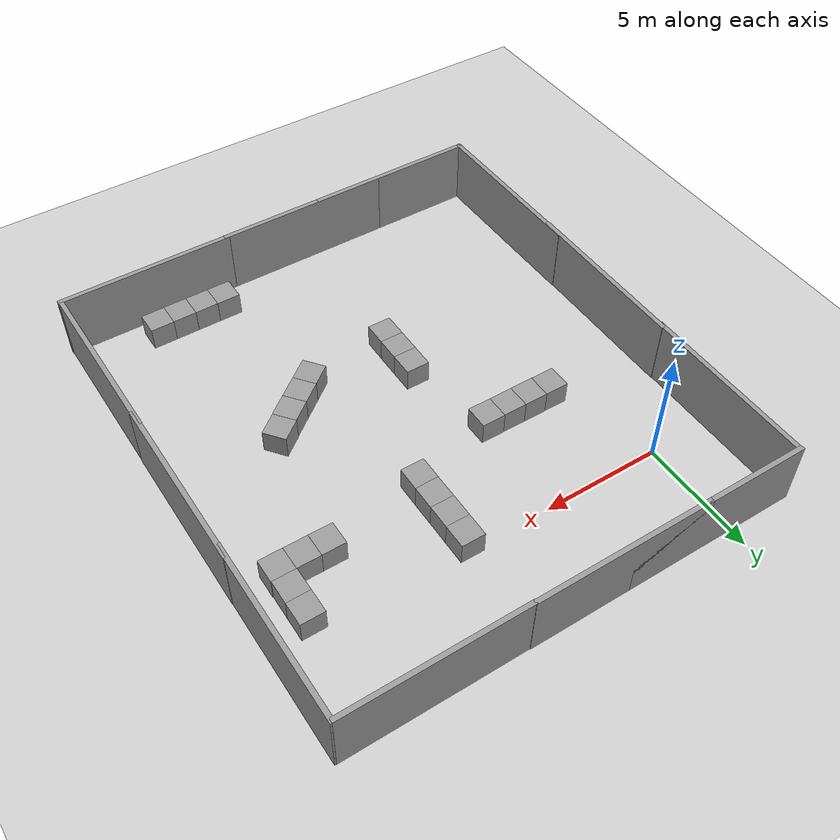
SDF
<sdf version="1.6">
 <world name="default">
  <light name="sun" type="directional">
   <pose>0 0 10 0 -0 0</pose>
   <diffuse>0.8 0.8 0.8 1</diffuse>
   <specular>0.2 0.2 0.2 1</specular>
   <attenuation>
    <range>1000</range>
    <constant>0.9</constant>
    <linear>0.01</linear>
    <quadratic>0.001</quadratic>
   </attenuation>
   <direction>-0.5 0.1 -0.9</direction>
  </light>
  <model name="ground_plane">
   <static>1</static>
   <link name="link">
    <collision name="collision">
     <geometry><plane><normal>0 0 1</normal><size>100 100</size></plane></geometry>
     <surface><friction><ode><mu>100</mu><mu2>50</mu2></ode></friction></surface>
    </collision>
    <visual name="visual">
     <cast_shadows>0</cast_shadows>
     <geometry><plane><normal>0 0 1</normal><size>100 100</size></plane></geometry>
     <material>
      <script><uri>file://media/materials/scripts/gazebo.material</uri><name>Gazebo/Grey</name></script>
     </material>
    </visual>
   </link>
  </model>
  <gravity>0 0 -9.8</gravity>
  <magnetic_field>6e-06 2.3e-05 -4.2e-05</magnetic_field>
  <atmosphere type="adiabatic"/>
  <physics name="default_physics" default="0" type="ode">
   <max_step_size>0.001</max_step_size>
   <real_time_factor>1</real_time_factor>
   <real_time_update_rate>1000</real_time_update_rate>
  </physics>
  <scene><ambient>0.4 0.4 0.4 1</ambient><background>0.7 0.7 0.7 1</background><shadows>1</shadows></scene>
  <audio><device>default</device></audio>
  <spherical_coordinates>
   <surface_model>EARTH_WGS84</surface_model>
   <latitude_deg>0</latitude_deg>
   <longitude_deg>0</longitude_deg>
   <elevation>0</elevation>
   <heading_deg>0</heading_deg>
  </spherical_coordinates>
  <model name="unit_box">
   <pose>4.67652 -4.41158 0.499995 1e-05 -0 -1.9e-05</pose>
   <link name="link">
    <inertial>
     <mass>1</mass>
     <inertia>
      <ixx>0.166667</ixx>
      <ixy>0</ixy>
      <ixz>0</ixz>
      <iyy>0.166667</iyy>
      <iyz>0</iyz>
      <izz>0.166667</izz>
     </inertia>
    </inertial>
    <collision name="collision"><geometry><box><size>1 1 1</size></box></geometry></collision>
    <visual name="visual">
     <geometry><box><size>1 1 1</size></box></geometry>
     <material>
      <script><name>Gazebo/Grey</name><uri>file://media/materials/scripts/gazebo.material</uri></script>
     </material>
    </visual>
   </link>
  </model>
  <model name="unit_box_clone">
   <pose>3.67652 -4.41308 0.499995 -1e-05 -0 -2.6e-05</pose>
   <link name="link">
    <inertial>
     <mass>1</mass>
     <inertia>
      <ixx>0.166667</ixx>
      <ixy>0</ixy>
      <ixz>0</ixz>
      <iyy>0.166667</iyy>
      <iyz>0</iyz>
      <izz>0.166667</izz>
     </inertia>
    </inertial>
    <collision name="collision"><geometry><box><size>1 1 1</size></box></geometry></collision>
    <visual name="visual">
     <geometry><box><size>1 1 1</size></box></geometry>
     <material>
      <script><name>Gazebo/Grey</name><uri>file://media/materials/scripts/gazebo.material</uri></script>
     </material>
    </visual>
   </link>
  </model>
  <model name="unit_box_clone_0">
   <pose>2.67642 -4.41272 0.499995 0 -1e-05 -4.2e-05</pose>
   <link name="link">
    <inertial>
     <mass>1</mass>
     <inertia>
      <ixx>0.166667</ixx>
      <ixy>0</ixy>
      <ixz>0</ixz>
      <iyy>0.166667</iyy>
      <iyz>0</iyz>
      <izz>0.166667</izz>
     </inertia>
    </inertial>
    <collision name="collision"><geometry><box><size>1 1 1</size></box></geometry></collision>
    <visual name="visual">
     <geometry><box><size>1 1 1</size></box></geometry>
     <material>
      <script><name>Gazebo/Grey</name><uri>file://media/materials/scripts/gazebo.material</uri></script>
     </material>
    </visual>
   </link>
  </model>
  <model name="unit_box_clone_1">
   <pose>1.67642 -4.41297 0.499995 0 -1e-05 -4.2e-05</pose>
   <link name="link">
    <inertial>
     <mass>1</mass>
     <inertia>
      <ixx>0.166667</ixx>
      <ixy>0</ixy>
      <ixz>0</ixz>
      <iyy>0.166667</iyy>
      <iyz>0</iyz>
      <izz>0.166667</izz>
     </inertia>
    </inertial>
    <collision name="collision"><geometry><box><size>1 1 1</size></box></geometry></collision>
    <visual name="visual">
     <geometry><box><size>1 1 1</size></box></geometry>
     <material>
      <script><name>Gazebo/Grey</name><uri>file://media/materials/scripts/gazebo.material</uri></script>
     </material>
    </visual>
   </link>
  </model>
  <model name="unit_box_0">
   <pose>8.4595 -0.31642 0.499995 1e-05 -0 -0.000873</pose>
   <link name="link">
    <inertial>
     <mass>1</mass>
     <inertia>
      <ixx>0.166667</ixx>
      <ixy>0</ixy>
      <ixz>0</ixz>
      <iyy>0.166667</iyy>
      <iyz>0</iyz>
      <izz>0.166667</izz>
     </inertia>
    </inertial>
    <collision name="collision"><geometry><box><size>1 1 1</size></box></geometry></collision>
    <visual name="visual">
     <geometry><box><size>1 1 1</size></box></geometry>
     <material>
      <script><name>Gazebo/Grey</name><uri>file://media/materials/scripts/gazebo.material</uri></script>
     </material>
    </visual>
   </link>
  </model>
  <model name="unit_box_1">
   <pose>8.45714 -1.31646 0.499995 0 1e-05 -0.000778</pose>
   <link name="link">
    <inertial>
     <mass>1</mass>
     <inertia>
      <ixx>0.166667</ixx>
      <ixy>0</ixy>
      <ixz>0</ixz>
      <iyy>0.166667</iyy>
      <iyz>0</iyz>
      <izz>0.166667</izz>
     </inertia>
    </inertial>
    <collision name="collision"><geometry><box><size>1 1 1</size></box></geometry></collision>
    <visual name="visual">
     <geometry><box><size>1 1 1</size></box></geometry>
     <material>
      <script><name>Gazebo/Grey</name><uri>file://media/materials/scripts/gazebo.material</uri></script>
     </material>
    </visual>
   </link>
  </model>
  <model name="unit_box_clone_2">
   <pose>8.45728 -2.3166 0.499985 0 1e-05 -0.00057</pose>
   <link name="link">
    <inertial>
     <mass>1</mass>
     <inertia>
      <ixx>0.166667</ixx>
      <ixy>0</ixy>
      <ixz>0</ixz>
      <iyy>0.166667</iyy>
      <iyz>0</iyz>
      <izz>0.166667</izz>
     </inertia>
    </inertial>
    <collision name="collision"><geometry><box><size>1 1 1</size></box></geometry></collision>
    <visual name="visual">
     <geometry><box><size>1 1 1</size></box></geometry>
     <material>
      <script><name>Gazebo/Grey</name><uri>file://media/materials/scripts/gazebo.material</uri></script>
     </material>
    </visual>
   </link>
  </model>
  <model name="unit_box_2_clone_0">
   <pose>10.1274 -9.2903 0.5 -0 -0 -0.905132</pose>
   <link name="link">
    <inertial>
     <mass>1</mass>
     <inertia>
      <ixx>0.166667</ixx>
      <ixy>0</ixy>
      <ixz>0</ixz>
      <iyy>0.166667</iyy>
      <iyz>0</iyz>
      <izz>0.166667</izz>
     </inertia>
    </inertial>
    <collision name="collision"><geometry><box><size>1 1 1</size></box></geometry></collision>
    <visual name="visual">
     <geometry><box><size>1 1 1</size></box></geometry>
     <material>
      <script><name>Gazebo/Grey</name><uri>file://media/materials/scripts/gazebo.material</uri></script>
     </material>
    </visual>
   </link>
  </model>
  <model name="unit_box_3">
   <pose>13.1492 -15.8512 0.499995 0 1e-05 -9.2e-05</pose>
   <link name="link">
    <inertial>
     <mass>1</mass>
     <inertia>
      <ixx>0.166667</ixx>
      <ixy>0</ixy>
      <ixz>0</ixz>
      <iyy>0.166667</iyy>
      <iyz>0</iyz>
      <izz>0.166667</izz>
     </inertia>
    </inertial>
    <collision name="collision"><geometry><box><size>1 1 1</size></box></geometry></collision>
    <visual name="visual">
     <geometry><box><size>1 1 1</size></box></geometry>
     <material>
      <script><name>Gazebo/Grey</name><uri>file://media/materials/scripts/gazebo.material</uri></script>
     </material>
    </visual>
   </link>
  </model>
  <model name="unit_box_3_clone">
   <pose>12.1492 -15.8566 0.499995 0 1e-05 -9.6e-05</pose>
   <link name="link">
    <inertial>
     <mass>1</mass>
     <inertia>
      <ixx>0.166667</ixx>
      <ixy>0</ixy>
      <ixz>0</ixz>
      <iyy>0.166667</iyy>
      <iyz>0</iyz>
      <izz>0.166667</izz>
     </inertia>
    </inertial>
    <collision name="collision"><geometry><box><size>1 1 1</size></box></geometry></collision>
    <visual name="visual">
     <geometry><box><size>1 1 1</size></box></geometry>
     <material>
      <script><name>Gazebo/Grey</name><uri>file://media/materials/scripts/gazebo.material</uri></script>
     </material>
    </visual>
   </link>
  </model>
  <model name="unit_box_3_clone_0">
   <pose>11.1492 -15.856 0.499995 0 1e-05 -9.6e-05</pose>
   <link name="link">
    <inertial>
     <mass>1</mass>
     <inertia>
      <ixx>0.166667</ixx>
      <ixy>0</ixy>
      <ixz>0</ixz>
      <iyy>0.166667</iyy>
      <iyz>0</iyz>
      <izz>0.166667</izz>
     </inertia>
    </inertial>
    <collision name="collision"><geometry><box><size>1 1 1</size></box></geometry></collision>
    <visual name="visual">
     <geometry><box><size>1 1 1</size></box></geometry>
     <material>
      <script><name>Gazebo/Grey</name><uri>file://media/materials/scripts/gazebo.material</uri></script>
     </material>
    </visual>
   </link>
  </model>
  <model name="unit_box_3_clone_1">
   <pose>10.1491 -15.8567 0.499995 0 -1e-05 -0.000221</pose>
   <link name="link">
    <inertial>
     <mass>1</mass>
     <inertia>
      <ixx>0.166667</ixx>
      <ixy>0</ixy>
      <ixz>0</ixz>
      <iyy>0.166667</iyy>
      <iyz>0</iyz>
      <izz>0.166667</izz>
     </inertia>
    </inertial>
    <collision name="collision"><geometry><box><size>1 1 1</size></box></geometry></collision>
    <visual name="visual">
     <geometry><box><size>1 1 1</size></box></geometry>
     <material>
      <script><name>Gazebo/Grey</name><uri>file://media/materials/scripts/gazebo.material</uri></script>
     </material>
    </visual>
   </link>
  </model>
  <model name="unit_box_3_clone_2">
   <pose>5.60264 -8.29307 0.499995 -1e-05 -0 -0.006489</pose>
   <link name="link">
    <inertial>
     <mass>1</mass>
     <inertia>
      <ixx>0.166667</ixx>
      <ixy>0</ixy>
      <ixz>0</ixz>
      <iyy>0.166667</iyy>
      <iyz>0</iyz>
      <izz>0.166667</izz>
     </inertia>
    </inertial>
    <collision name="collision"><geometry><box><size>1 1 1</size></box></geometry></collision>
    <visual name="visual">
     <geometry><box><size>1 1 1</size></box></geometry>
     <material>
      <script><name>Gazebo/Grey</name><uri>file://media/materials/scripts/gazebo.material</uri></script>
     </material>
    </visual>
   </link>
  </model>
  <model name="unit_box_3_clone_3">
   <pose>5.59915 -9.29307 0.499995 -1e-05 -0 -0.006488</pose>
   <link name="link">
    <inertial>
     <mass>1</mass>
     <inertia>
      <ixx>0.166667</ixx>
      <ixy>0</ixy>
      <ixz>0</ixz>
      <iyy>0.166667</iyy>
      <iyz>0</iyz>
      <izz>0.166667</izz>
     </inertia>
    </inertial>
    <collision name="collision"><geometry><box><size>1 1 1</size></box></geometry></collision>
    <visual name="visual">
     <geometry><box><size>1 1 1</size></box></geometry>
     <material>
      <script><name>Gazebo/Grey</name><uri>file://media/materials/scripts/gazebo.material</uri></script>
     </material>
    </visual>
   </link>
  </model>
  <model name="unit_box_3_clone_4">
   <pose>5.58684 -10.293 0.499995 -1e-05 0 -0.006483</pose>
   <link name="link">
    <inertial>
     <mass>1</mass>
     <inertia>
      <ixx>0.166667</ixx>
      <ixy>0</ixy>
      <ixz>0</ixz>
      <iyy>0.166667</iyy>
      <iyz>0</iyz>
      <izz>0.166667</izz>
     </inertia>
    </inertial>
    <collision name="collision"><geometry><box><size>1 1 1</size></box></geometry></collision>
    <visual name="visual">
     <geometry><box><size>1 1 1</size></box></geometry>
     <material>
      <script><name>Gazebo/Grey</name><uri>file://media/materials/scripts/gazebo.material</uri></script>
     </material>
    </visual>
   </link>
  </model>
  <model name="unit_box_2_clone_0_clone">
   <pose>10.9148 -8.67373 0.5 0 0 -0.905121</pose>
   <link name="link">
    <inertial>
     <mass>1</mass>
     <inertia>
      <ixx>0.166667</ixx>
      <ixy>0</ixy>
      <ixz>0</ixz>
      <iyy>0.166667</iyy>
      <iyz>0</iyz>
      <izz>0.166667</izz>
     </inertia>
    </inertial>
    <collision name="collision"><geometry><box><size>1 1 1</size></box></geometry></collision>
    <visual name="visual">
     <geometry><box><size>1 1 1</size></box></geometry>
     <material>
      <script><name>Gazebo/Grey</name><uri>file://media/materials/scripts/gazebo.material</uri></script>
     </material>
    </visual>
   </link>
  </model>
  <model name="unit_box_2_clone_0_clone_0">
   <pose>11.6935 -8.04615 0.5 0 0 -0.905203</pose>
   <link name="link">
    <inertial>
     <mass>1</mass>
     <inertia>
      <ixx>0.166667</ixx>
      <ixy>0</ixy>
      <ixz>0</ixz>
      <iyy>0.166667</iyy>
      <iyz>0</iyz>
      <izz>0.166667</izz>
     </inertia>
    </inertial>
    <collision name="collision"><geometry><box><size>1 1 1</size></box></geometry></collision>
    <visual name="visual">
     <geometry><box><size>1 1 1</size></box></geometry>
     <material>
      <script><name>Gazebo/Grey</name><uri>file://media/materials/scripts/gazebo.material</uri></script>
     </material>
    </visual>
   </link>
  </model>
  <model name="unit_box_2_clone_0_clone_1">
   <pose>9.34158 -9.90888 0.5 -0 -0 -0.905131</pose>
   <link name="link">
    <inertial>
     <mass>1</mass>
     <inertia>
      <ixx>0.166667</ixx>
      <ixy>0</ixy>
      <ixz>0</ixz>
      <iyy>0.166667</iyy>
      <iyz>0</iyz>
      <izz>0.166667</izz>
     </inertia>
    </inertial>
    <collision name="collision"><geometry><box><size>1 1 1</size></box></geometry></collision>
    <visual name="visual">
     <geometry><box><size>1 1 1</size></box></geometry>
     <material>
      <script><name>Gazebo/Grey</name><uri>file://media/materials/scripts/gazebo.material</uri></script>
     </material>
    </visual>
   </link>
  </model>
  <model name="unit_box_2">
   <pose>14.7025 -0.629848 0.5 0 -0 0.000132</pose>
   <link name="link">
    <inertial>
     <mass>1</mass>
     <inertia>
      <ixx>0.166667</ixx>
      <ixy>0</ixy>
      <ixz>0</ixz>
      <iyy>0.166667</iyy>
      <iyz>0</iyz>
      <izz>0.166667</izz>
     </inertia>
    </inertial>
    <collision name="collision"><geometry><box><size>1 1 1</size></box></geometry></collision>
    <visual name="visual">
     <geometry><box><size>1 1 1</size></box></geometry>
     <material>
      <script><name>Gazebo/Grey</name><uri>file://media/materials/scripts/gazebo.material</uri></script>
     </material>
    </visual>
   </link>
  </model>
  <model name="unit_box_4">
   <pose>14.7025 -1.62986 0.499995 -1e-05 -0 0.000122</pose>
   <link name="link">
    <inertial>
     <mass>1</mass>
     <inertia>
      <ixx>0.166667</ixx>
      <ixy>0</ixy>
      <ixz>0</ixz>
      <iyy>0.166667</iyy>
      <iyz>0</iyz>
      <izz>0.166667</izz>
     </inertia>
    </inertial>
    <collision name="collision"><geometry><box><size>1 1 1</size></box></geometry></collision>
    <visual name="visual">
     <geometry><box><size>1 1 1</size></box></geometry>
     <material>
      <script><name>Gazebo/Grey</name><uri>file://media/materials/scripts/gazebo.material</uri></script>
     </material>
    </visual>
   </link>
  </model>
  <model name="unit_box_4_clone">
   <pose>14.7199 -2.62995 0.499995 -1e-05 -0 -5.9e-05</pose>
   <link name="link">
    <inertial>
     <mass>1</mass>
     <inertia>
      <ixx>0.166667</ixx>
      <ixy>0</ixy>
      <ixz>0</ixz>
      <iyy>0.166667</iyy>
      <iyz>0</iyz>
      <izz>0.166667</izz>
     </inertia>
    </inertial>
    <collision name="collision"><geometry><box><size>1 1 1</size></box></geometry></collision>
    <visual name="visual">
     <geometry><box><size>1 1 1</size></box></geometry>
     <material>
      <script><name>Gazebo/Grey</name><uri>file://media/materials/scripts/gazebo.material</uri></script>
     </material>
    </visual>
   </link>
  </model>
  <model name="unit_box_5">
   <pose>13.7199 -2.63133 0.499995 1e-05 0 -0.000102</pose>
   <link name="link">
    <inertial>
     <mass>1</mass>
     <inertia>
      <ixx>0.166667</ixx>
      <ixy>0</ixy>
      <ixz>0</ixz>
      <iyy>0.166667</iyy>
      <iyz>0</iyz>
      <izz>0.166667</izz>
     </inertia>
    </inertial>
    <collision name="collision"><geometry><box><size>1 1 1</size></box></geometry></collision>
    <visual name="visual">
     <geometry><box><size>1 1 1</size></box></geometry>
     <material>
      <script><name>Gazebo/Grey</name><uri>file://media/materials/scripts/gazebo.material</uri></script>
     </material>
    </visual>
   </link>
  </model>
  <model name="unit_box_6">
   <pose>12.7196 -2.63176 0.499995 0 1e-05 -0.000611</pose>
   <link name="link">
    <inertial>
     <mass>1</mass>
     <inertia>
      <ixx>0.166667</ixx>
      <ixy>0</ixy>
      <ixz>0</ixz>
      <iyy>0.166667</iyy>
      <iyz>0</iyz>
      <izz>0.166667</izz>
     </inertia>
    </inertial>
    <collision name="collision"><geometry><box><size>1 1 1</size></box></geometry></collision>
    <visual name="visual">
     <geometry><box><size>1 1 1</size></box></geometry>
     <material>
      <script><name>Gazebo/Grey</name><uri>file://media/materials/scripts/gazebo.material</uri></script>
     </material>
    </visual>
   </link>
  </model>
  <model name="grey_wall">
   <static>1</static>
   <link name="link">
    <pose>0 0 1.4 0 -0 0</pose>
    <collision name="collision"><geometry><box><size>7.5 0.2 2.8</size></box></geometry></collision>
    <visual name="visual">
     <cast_shadows>0</cast_shadows>
     <geometry><box><size>7.5 0.2 2.8</size></box></geometry>
     <material>
      <script>
       <uri>model://grey_wall/materials/scripts</uri>
       <uri>model://grey_wall/materials/textures</uri>
       <name>vrc/grey_wall</name>
      </script>
     </material>
    </visual>
   </link>
   <pose>12.6513 4.13187 0 0 -0 0</pose>
  </model>
  <model name="grey_wall_clone">
   <static>1</static>
   <link name="link">
    <pose>0 0 1.4 0 -0 0</pose>
    <collision name="collision"><geometry><box><size>7.5 0.2 2.8</size></box></geometry></collision>
    <visual name="visual">
     <cast_shadows>0</cast_shadows>
     <geometry><box><size>7.5 0.2 2.8</size></box></geometry>
     <material>
      <script>
       <uri>model://grey_wall/materials/scripts</uri>
       <uri>model://grey_wall/materials/textures</uri>
       <name>vrc/grey_wall</name>
      </script>
     </material>
    </visual>
   </link>
   <pose>5.21652 4.15202 0 0 -0 0</pose>
  </model>
  <model name="grey_wall_clone_0">
   <static>1</static>
   <link name="link">
    <pose>0 0 1.4 0 -0 0</pose>
    <collision name="collision"><geometry><box><size>7.5 0.2 2.8</size></box></geometry></collision>
    <visual name="visual">
     <cast_shadows>0</cast_shadows>
     <geometry><box><size>7.5 0.2 2.8</size></box></geometry>
     <material>
      <script>
       <uri>model://grey_wall/materials/scripts</uri>
       <uri>model://grey_wall/materials/textures</uri>
       <name>vrc/grey_wall</name>
      </script>
     </material>
    </visual>
   </link>
   <pose>0.970534 4.15202 0 0 -0 0</pose>
  </model>
  <model name="grey_wall_clone_1">
   <static>1</static>
   <link name="link">
    <pose>0 0 1.4 0 -0 0</pose>
    <collision name="collision"><geometry><box><size>7.5 0.2 2.8</size></box></geometry></collision>
    <visual name="visual">
     <cast_shadows>0</cast_shadows>
     <geometry><box><size>7.5 0.2 2.8</size></box></geometry>
     <material>
      <script>
       <uri>model://grey_wall/materials/scripts</uri>
       <uri>model://grey_wall/materials/textures</uri>
       <name>vrc/grey_wall</name>
      </script>
     </material>
    </visual>
   </link>
   <pose>-2.65523 0.433376 0 0 -0 1.57136</pose>
  </model>
  <model name="grey_wall_clone_1_clone">
   <static>1</static>
   <link name="link">
    <pose>0 0 1.4 0 -0 0</pose>
    <collision name="collision"><geometry><box><size>7.5 0.2 2.8</size></box></geometry></collision>
    <visual name="visual">
     <cast_shadows>0</cast_shadows>
     <geometry><box><size>7.5 0.2 2.8</size></box></geometry>
     <material>
      <script>
       <uri>model://grey_wall/materials/scripts</uri>
       <uri>model://grey_wall/materials/textures</uri>
       <name>vrc/grey_wall</name>
      </script>
     </material>
    </visual>
   </link>
   <pose>-2.62564 -6.78346 0 0 -0 1.56912</pose>
  </model>
  <model name="grey_wall_clone_1_clone_0">
   <static>1</static>
   <link name="link">
    <pose>0 0 1.4 0 -0 0</pose>
    <collision name="collision"><geometry><box><size>7.5 0.2 2.8</size></box></geometry></collision>
    <visual name="visual">
     <cast_shadows>0</cast_shadows>
     <geometry><box><size>7.5 0.2 2.8</size></box></geometry>
     <material>
      <script>
       <uri>model://grey_wall/materials/scripts</uri>
       <uri>model://grey_wall/materials/textures</uri>
       <name>vrc/grey_wall</name>
      </script>
     </material>
    </visual>
   </link>
   <pose>-2.58686 -13.2999 0 0 -0 1.57623</pose>
  </model>
  <model name="grey_wall_clone_1_clone_1">
   <static>1</static>
   <link name="link">
    <pose>0 0 1.4 0 -0 0</pose>
    <collision name="collision"><geometry><box><size>7.5 0.2 2.8</size></box></geometry></collision>
    <visual name="visual">
     <cast_shadows>0</cast_shadows>
     <geometry><box><size>7.5 0.2 2.8</size></box></geometry>
     <material>
      <script>
       <uri>model://grey_wall/materials/scripts</uri>
       <uri>model://grey_wall/materials/textures</uri>
       <name>vrc/grey_wall</name>
      </script>
     </material>
    </visual>
   </link>
   <pose>16.3883 0.47439 0 0 -0 1.57623</pose>
  </model>
  <model name="grey_wall_clone_1_clone_2">
   <static>1</static>
   <link name="link">
    <pose>0 0 1.4 0 -0 0</pose>
    <collision name="collision"><geometry><box><size>7.5 0.2 2.8</size></box></geometry></collision>
    <visual name="visual">
     <cast_shadows>0</cast_shadows>
     <geometry><box><size>7.5 0.2 2.8</size></box></geometry>
     <material>
      <script>
       <uri>model://grey_wall/materials/scripts</uri>
       <uri>model://grey_wall/materials/textures</uri>
       <name>vrc/grey_wall</name>
      </script>
     </material>
    </visual>
   </link>
   <pose>16.4389 -6.38626 0 0 -0 1.57623</pose>
  </model>
  <model name="grey_wall_clone_1_clone_3">
   <static>1</static>
   <link name="link">
    <pose>0 0 1.4 0 -0 0</pose>
    <collision name="collision"><geometry><box><size>7.5 0.2 2.8</size></box></geometry></collision>
    <visual name="visual">
     <cast_shadows>0</cast_shadows>
     <geometry><box><size>7.5 0.2 2.8</size></box></geometry>
     <material>
      <script>
       <uri>model://grey_wall/materials/scripts</uri>
       <uri>model://grey_wall/materials/textures</uri>
       <name>vrc/grey_wall</name>
      </script>
     </material>
    </visual>
   </link>
   <pose>16.4634 -13.1769 0 0 -0 1.57623</pose>
  </model>
  <model name="grey_wall_clone_2">
   <static>1</static>
   <link name="link">
    <pose>0 0 1.4 0 -0 0</pose>
    <collision name="collision"><geometry><box><size>7.5 0.2 2.8</size></box></geometry></collision>
    <visual name="visual">
     <cast_shadows>0</cast_shadows>
     <geometry><box><size>7.5 0.2 2.8</size></box></geometry>
     <material>
      <script>
       <uri>model://grey_wall/materials/scripts</uri>
       <uri>model://grey_wall/materials/textures</uri>
       <name>vrc/grey_wall</name>
      </script>
     </material>
    </visual>
   </link>
   <pose>12.8494 -16.9858 0 0 -0 0</pose>
  </model>
  <model name="grey_wall_clone_3">
   <static>1</static>
   <link name="link">
    <pose>0 0 1.4 0 -0 0</pose>
    <collision name="collision"><geometry><box><size>7.5 0.2 2.8</size></box></geometry></collision>
    <visual name="visual">
     <cast_shadows>0</cast_shadows>
     <geometry><box><size>7.5 0.2 2.8</size></box></geometry>
     <material>
      <script>
       <uri>model://grey_wall/materials/scripts</uri>
       <uri>model://grey_wall/materials/textures</uri>
       <name>vrc/grey_wall</name>
      </script>
     </material>
    </visual>
   </link>
   <pose>5.5473 -16.9975 0 0 -0 0</pose>
  </model>
  <model name="grey_wall_clone_4">
   <static>1</static>
   <link name="link">
    <pose>0 0 1.4 0 -0 0</pose>
    <collision name="collision"><geometry><box><size>7.5 0.2 2.8</size></box></geometry></collision>
    <visual name="visual">
     <cast_shadows>0</cast_shadows>
     <geometry><box><size>7.5 0.2 2.8</size></box></geometry>
     <material>
      <script>
       <uri>model://grey_wall/materials/scripts</uri>
       <uri>model://grey_wall/materials/textures</uri>
       <name>vrc/grey_wall</name>
      </script>
     </material>
    </visual>
   </link>
   <pose>1.09166 -17.0003 0 0 -0 0</pose>
  </model>
  <model name="unit_box_7">
   <pose>8.45316 -3.31661 0.499995 1e-05 -0 -0.000571</pose>
   <link name="link">
    <inertial>
     <mass>1</mass>
     <inertia>
      <ixx>0.166667</ixx>
      <ixy>0</ixy>
      <ixz>0</ixz>
      <iyy>0.166667</iyy>
      <iyz>0</iyz>
      <izz>0.166667</izz>
     </inertia>
    </inertial>
    <collision name="collision"><geometry><box><size>1 1 1</size></box></geometry></collision>
    <visual name="visual">
     <geometry><box><size>1 1 1</size></box></geometry>
     <material>
      <script><name>Gazebo/Grey</name><uri>file://media/materials/scripts/gazebo.material</uri></script>
     </material>
    </visual>
   </link>
  </model>
 </world>
</sdf>
